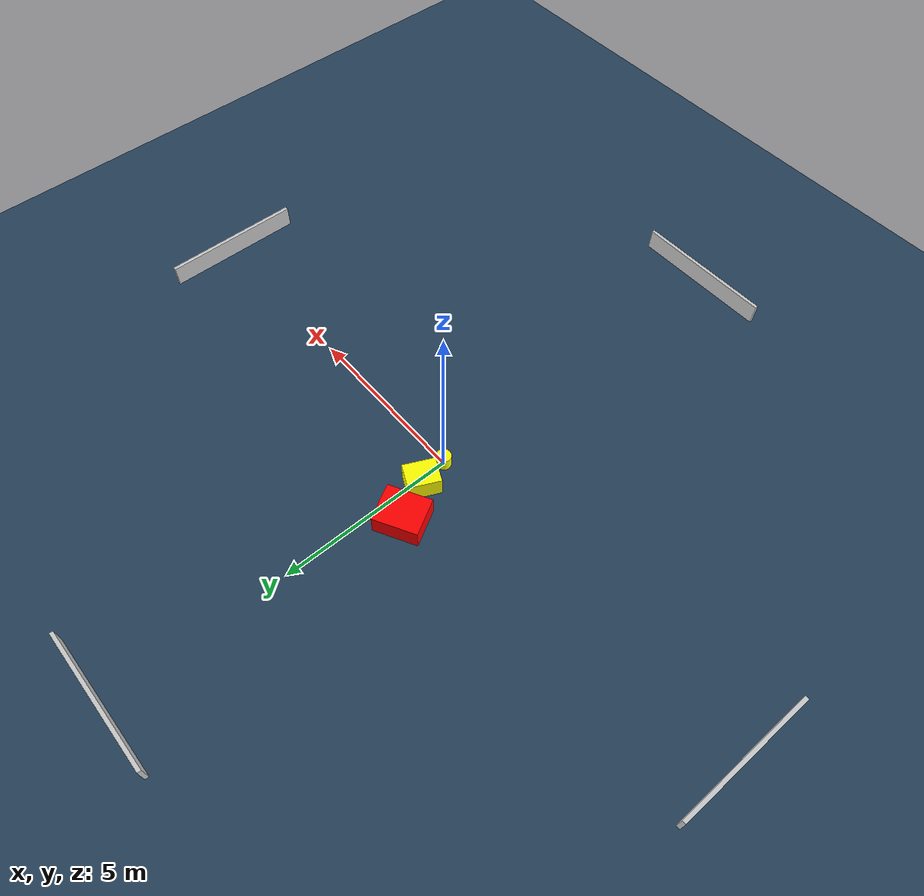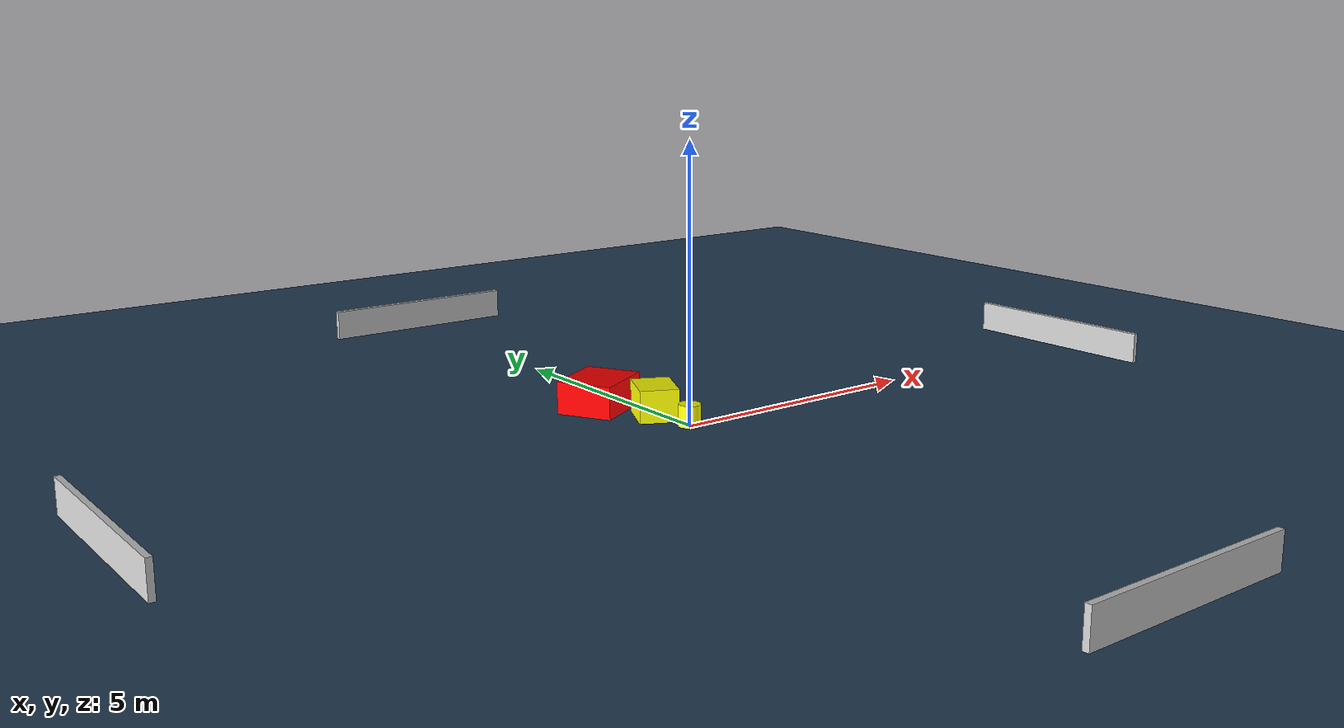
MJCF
<?xml version="1.0" ?>
<mujoco model="generated_environment">
  <option timestep="0.01" integrator="RK4" cone="elliptic"/>
  <default>
    <geom density="1"/>
  </default>
  <asset>
    <texture builtin="gradient" height="3072" name="skybox" rgb1="0.3 0.5 0.7" rgb2="0 0 0" type="skybox" width="512"/>
    <texture builtin="checker" height="300" name="groundplane" rgb1="0.2 0.3 0.4" rgb2="0.1 0.2 0.3" type="2d" width="300"/>
    <material name="groundplane" reflectance="0.2" texrepeat="5 5" texture="groundplane"/>
  </asset>
  <worldbody>
    <light dir="0 0 -1" directional="true" pos="0 0 1.5"/>
    <geom condim="3" friction="0.5 0.005 0.001" material="groundplane" name="floor" pos="0 0 0" size="0 0 0.05" type="plane"/>
    <body name="walls">
      <geom name="wall_1" condim="4" pos="-10.0 0.0 0.3" rgba="0.800000011920929 0.800000011920929 0.800000011920929 1.0" size="0.05 2.0 0.3" type="box"/>
      <geom name="wall_2" condim="4" pos="10.0 0.0 0.3" rgba="0.800000011920929 0.800000011920929 0.800000011920929 1.0" size="0.05 2.0 0.3" type="box"/>
      <geom name="wall_3" condim="4" pos="0.0 -10.0 0.3" rgba="0.800000011920929 0.800000011920929 0.800000011920929 1.0" size="2.0 0.05 0.3" type="box"/>
      <geom name="wall_4" condim="4" pos="0.0 10.0 0.3" rgba="0.800000011920929 0.800000011920929 0.800000011920929 1.0" size="2.0 0.05 0.3" type="box"/>
    </body>
    <body name="robot">
      <joint name="joint_x" type="slide" pos="0 0 0" axis="1 0 0"/>
      <joint name="joint_y" type="slide" pos="0 0 0" axis="0 1 0"/>
      <geom name="robot" type="cylinder" pos="0.0 0.0 0.2" size="0.2 0.2 0.0" mass="5.0" friction="1.0 0.005 0.0001" condim="4" rgba="1.0 1.0 0.0 1.0"/>
    </body>
    <body name="obstacle_1_movable">
      <geom name="obstacle_1_movable" condim="4" pos="-0.13522433970061404 0.8457831374719448 0.3" euler="0 0 64.87375032774723" friction="0.0 0.005 0.001" rgba="1.0 1.0 0.0 1.0" size="0.4460261276941 0.3557831730361456 0.3" type="box" mass="0.1"/>
      <joint type="free"/>
    </body>
    <body name="obstacle_2_static">
      <geom name="obstacle_2_static" condim="4" pos="-0.6374112253703293 1.879830217923858 0.3" euler="0 0 209.13204580370095" friction="0.0 0.005 0.001" rgba="1.0 0.0 0.0 1.0" size="0.6176914044916513 0.5259564054119463 0.3" type="box"/>
    </body>
  </worldbody>
  <actuator>
    <motor name="actuator_x" joint="joint_x" gear="1" ctrlrange="-1 1"/>
    <motor name="actuator_y" joint="joint_y" gear="1" ctrlrange="-1 1"/>
  </actuator>
</mujoco>
